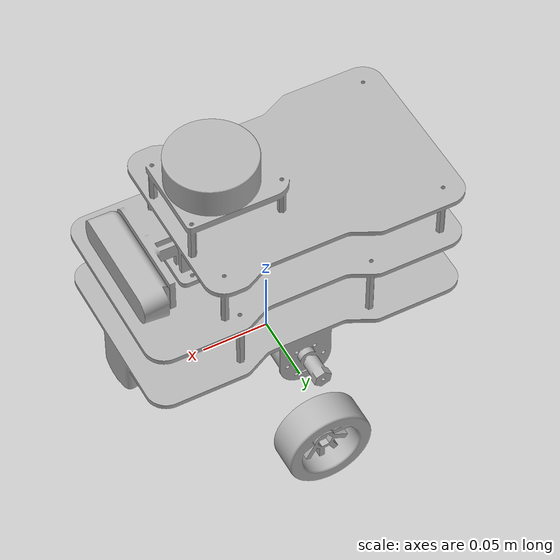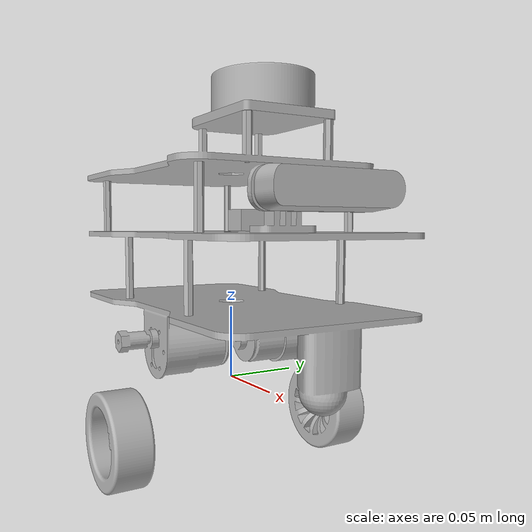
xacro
<?xml version="1.0"?>
<robot name="gogo" xmlns:xacro="http://www.ros.org/wiki/xacro">

  <!-- MATERIAL -->
  <material name="silver">
    <color rgba="0.7 0.7 0.7 1.0"/>
  </material>

  <!-- BASE LINK -->
  <link name="base_link">
    <inertial>
      <origin xyz="0.00014891641118042382 -3.330593326496944e-05 0.08014365341587747" rpy="0 0 0"/>
      <mass value="4.296738201060667"/>
      <inertia ixx="0.015568" iyy="0.030421" izz="0.025452"
               ixy="-4e-06" iyz="-1.1e-05" ixz="-4.7e-05"/>
    </inertial>

    <visual>
      <origin xyz="0 0 0" rpy="0 0 0"/>
      <geometry>
        <mesh filename="package://gogo_description/meshes/base_link.stl" scale="0.001 0.001 0.001"/>
      </geometry>
      <material name="silver"/>
    </visual>

    <collision>
      <origin xyz="0 0 0" rpy="0 0 0"/>
      <geometry>
        <mesh filename="package://gogo_description/meshes/base_link.stl" scale="0.001 0.001 0.001"/>
      </geometry>
    </collision>
  </link>

  <!-- LEFT WHEEL LINK -->
  <link name="left_wheel_link">
    <visual>
      <origin xyz="0 -0.0837 -0.0325" rpy="0 0 0"/>
      <geometry>
        <mesh filename="package://gogo_description/meshes/left_wheel_1.stl"
              scale="0.001 0.001 0.001"/>
      </geometry>
      <material name="silver"/>
    </visual>

    <collision>
      <origin xyz="0 -0.0837 -0.0325" rpy="0 0 0"/>
      <geometry>
        <mesh filename="package://gogo_description/meshes/left_wheel_1.stl"
              scale="0.001 0.001 0.001"/>
      </geometry>
    </collision>
  </link>

  <joint name="wheel_left_joint" type="fixed">
    <parent link="base_link"/>
    <child link="left_wheel_link"/>
    <origin xyz="-0.0 -0.0837 -0.0325" rpy="0 0 0"/>
  </joint>

  <!-- RIGHT WHEEL LINK -->
  <link name="right_wheel_link">
    <visual>
      <origin xyz="0 0.0837 -0.0325" rpy="0 0 0"/>
      <geometry>
        <mesh filename="package://gogo_description/meshes/right_wheel_1.stl"
              scale="0.001 0.001 0.001"/>
      </geometry>
      <material name="silver"/>
    </visual>

    <collision>
      <origin xyz="0 0.0837 -0.0325" rpy="0 0 0"/>
      <geometry>
        <mesh filename="package://gogo_description/meshes/right_wheel_1.stl"
              scale="0.001 0.001 0.001"/>
      </geometry>
    </collision>
  </link>

  <joint name="wheel_right_joint" type="fixed">
    <parent link="base_link"/>
    <child link="right_wheel_link"/>
    <origin xyz="-0.0 0.0837 -0.0325" rpy="0 0 0"/>
  </joint>

  <!-- LIDAR -->
  <link name="lidar_link_1">
    <visual>
      <origin xyz="-0.034 0.0 -0.1771" rpy="0 0 0"/>
      <geometry>
        <mesh filename="package://gogo_description/meshes/lidar_link_1.stl"
              scale="0.001 0.001 0.001"/>
      </geometry>
      <material name="silver"/>
    </visual>
  </link>

  <joint name="lidar_joint" type="fixed">
    <parent link="base_link"/>
    <child link="lidar_link_1"/>
    <origin xyz="0.034 0.0 0.1771" rpy="0 0 0"/>
  </joint>

  <!-- CAMERA -->
  <link name="camera_link_1">
    <visual>
      <origin xyz="-0.0925 0.0 -0.1274" rpy="0 0 0"/>
      <geometry>
        <mesh filename="package://gogo_description/meshes/camera_link_1.stl"
              scale="0.001 0.001 0.001"/>
      </geometry>
      <material name="silver"/>
    </visual>
  </link>

  <joint name="camera_joint" type="fixed">
    <parent link="base_link"/>
    <child link="camera_link_1"/>
    <origin xyz="0.0925 0.0 0.1274" rpy="0 0 0"/>
  </joint>

  <!-- IMU -->
  <link name="imu_link_1">
    <visual>
      <origin xyz="-0.008683 -0.004961 -0.1029" rpy="0 0 0"/>
      <geometry>
        <mesh filename="package://gogo_description/meshes/imu_link_1.stl"
              scale="0.001 0.001 0.001"/>
      </geometry>
      <material name="silver"/>
    </visual>
  </link>

  <joint name="imu_joint" type="fixed">
    <parent link="base_link"/>
    <child link="imu_link_1"/>
    <origin xyz="0.008683 0.004961 0.1029" rpy="0 0 0"/>
  </joint>

  <!-- Standard imu_link alias frame -->
  <link name="imu_link"/>
  <joint name="imu_link_joint" type="fixed">
    <parent link="imu_link_1"/>
    <child link="imu_link"/>
    <origin xyz="0 0 0" rpy="0 0 0"/>
  </joint>

  <!-- GPS -->
  <link name="gps_link"/>
  <joint name="gps_joint" type="fixed">
    <parent link="base_link"/>
    <child link="gps_link"/>
    <origin xyz="-0.05 0.0 0.20" rpy="0 0 0"/>
  </joint>

</robot>
